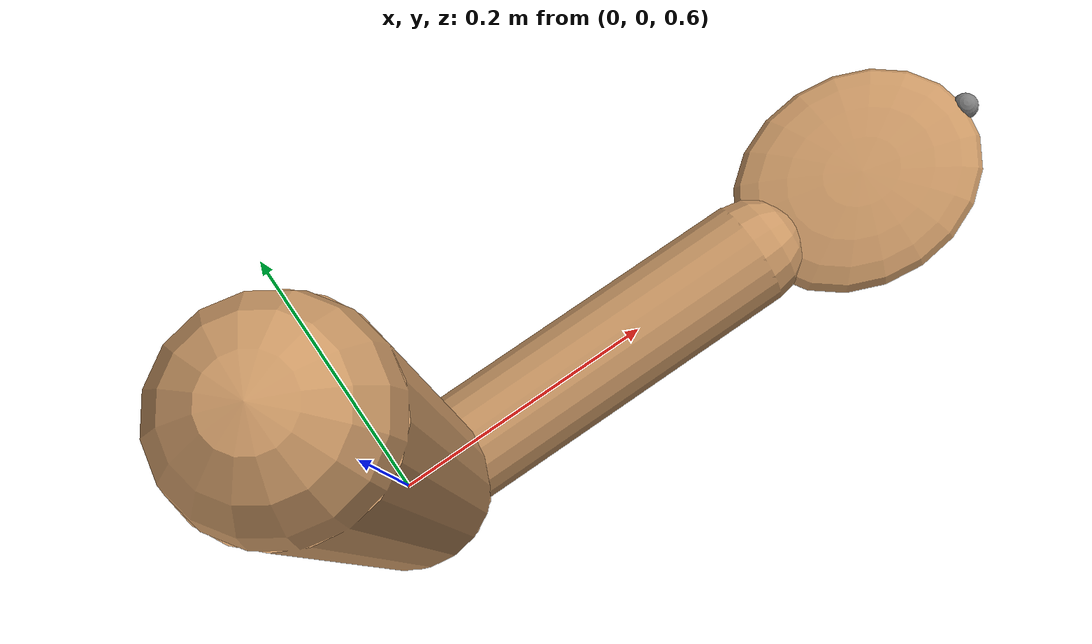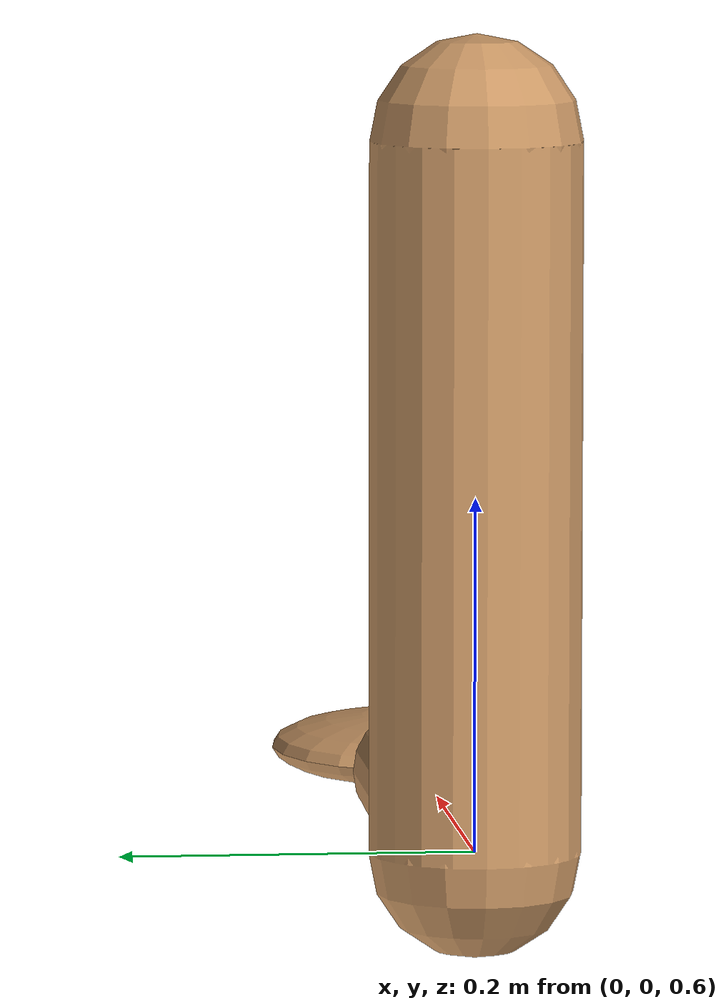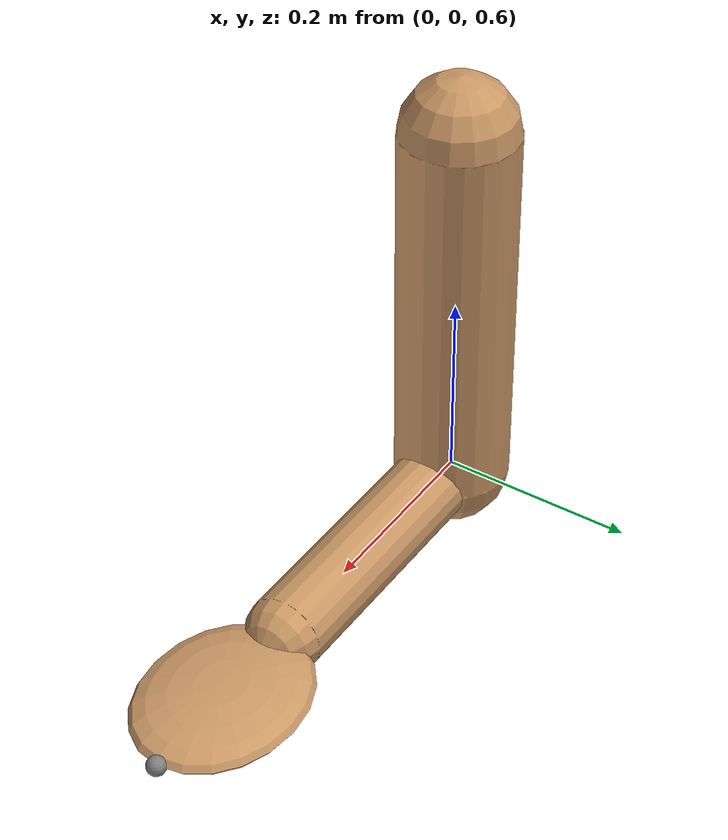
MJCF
<mujoco model="basic_arm">
  <default>
    <geom rgba=".8 .6 .4 1"/>
  </default>

  <asset>
    <texture type="skybox" builtin="gradient" rgb1="1 1 1" rgb2=".6 .8 .1" width="256" height="256"/>
  </asset>

  <worldbody>
    <light pos="0 1 1" dir="0 -1 -1" diffuse="1 1 1"/>
    <body pos="0 0 1">
      <joint name="root_y" axis="0 1 0"/>
      <joint name="root_x" axis="1 0 0"/>
      <joint name="root_z" axis="0 0 1"/>
      <geom type="capsule" size="0.06" fromto="0 0 0  0 0 -.4"/>
      <body pos="0 0 -0.4">
        <joint name="hinge_y1" axis="0 1 0"/>
        <joint name="hinge_x1" axis="1 0 0"/>
        <geom type="capsule" size="0.04" fromto="0 0 0  .3 0 0"/>
        <body pos=".3 0 0">
          <joint name="hinge_y2" axis="0 1 0"/>
          <joint name="hinge_z2" axis="0 0 1"/>
          <geom pos=".1 0 0" size="0.1 0.08 0.02" type="ellipsoid"/>
          <site name="end1" pos="0.2 0 0" size="0.01"/>
        </body>
      </body>
    </body>
  </worldbody>

  <actuator>
    <motor name="motor_root_y" joint="root_y" gear="50"/>
    <motor name="motor_root_x" joint="root_x" gear="50"/>
    <motor name="motor_root_z" joint="root_z" gear="50"/>
    <motor name="motor_hinge_y1" joint="hinge_y1" gear="50"/>
    <motor name="motor_hinge_x1" joint="hinge_x1" gear="50"/>
    <motor name="motor_hinge_y2" joint="hinge_y2" gear="50"/>
    <motor name="motor_hinge_z2" joint="hinge_z2" gear="50"/>
  </actuator>
</mujoco>
